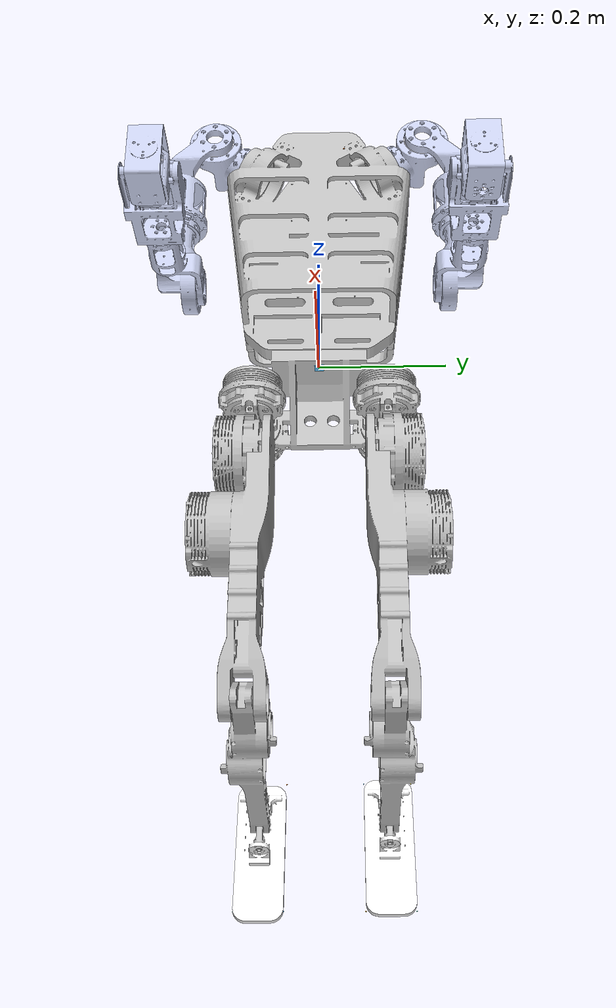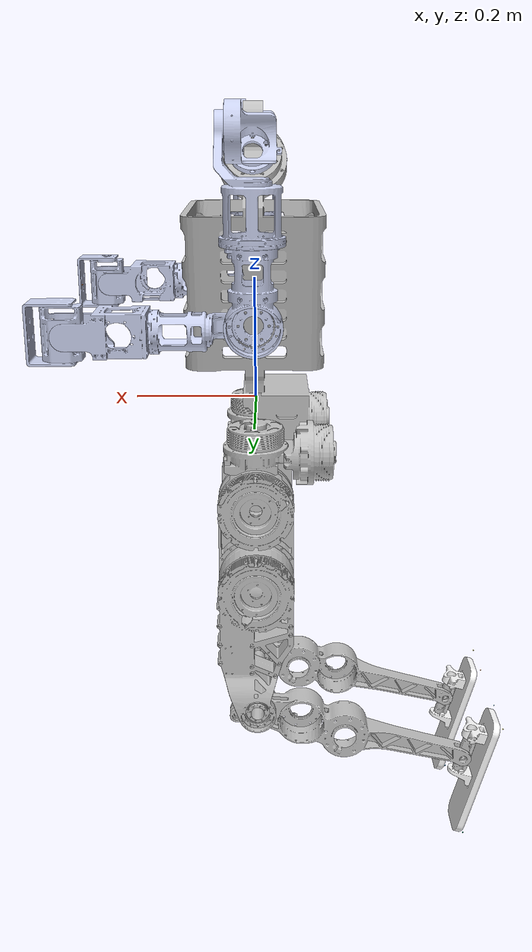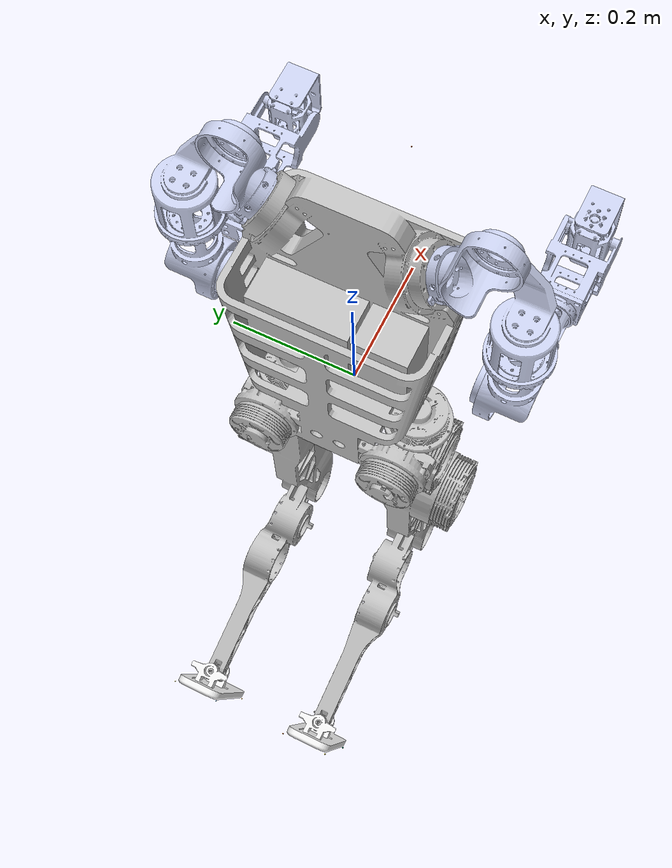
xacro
<?xml version="1.0" encoding="utf-8"?>
<robot xmlns:xacro="http://www.ros.org/wiki/xacro" name="hunter">

  <gazebo>
    <plugin name="gazebo_ros_control" filename="libhunter_bipedal_hw_sim.so">
      <robotNamespace>/</robotNamespace>
      <robotParam>legged_robot_description</robotParam>
      <robotSimType>legged_gazebo/LeggedHWSim</robotSimType>
    </plugin>
  </gazebo>

  <gazebo>
    <plugin filename="libgazebo_ros_p3d.so" name="p3d_base_controller">
      <alwaysOn>true</alwaysOn>
      <updateRate>500.0</updateRate>
      <bodyName>base_link</bodyName>
      <topicName>ground_truth/state</topicName>
      <gaussianNoise>0</gaussianNoise>
      <frameName>world</frameName>
      <xyzOffsets>0 0 0</xyzOffsets>
      <rpyOffsets>0 0 0</rpyOffsets>
    </plugin>
  </gazebo>

  <link name="base_link">
    <inertial>
      <origin
              xyz="-0.02983954 0.00086547 0.14856051"
              rpy="0 0 0" />
      <mass
              value="18.945426" />
      <inertia
              ixx="0.49280384"
              ixy="-0.00038292"
              ixz="-0.04951313"
              iyy="0.42814074"
              iyz="-0.00020145"
              izz="0.15555181" />
    </inertial>
    <visual>
      <origin xyz="0 0 0" rpy="0 0 0" />
      <geometry>
        <mesh
                filename="package://legged_hunter_description/meshes/base_link.STL" />
      </geometry>
      <material name="">
        <color rgba="0.75294 0.75294 0.75294 1" />
      </material>
    </visual>
    <collision>
      <origin xyz="-0.01 0 0.206" rpy="0 0 0" />
      <geometry>
        <box size="0.184 0.15 0.2" />
      </geometry>
    </collision>
  </link>

  <!-- Imu is fixed to the base link -->
  <joint name="imu_joint" type="fixed">
    <origin rpy="0. 0. 0." xyz="0. 0. 0"/>
    <parent link="base_link"/>
    <child link="imu_link"/>
  </joint>
  <!-- Imu link -->
  <link name="imu_link">
    <inertial>
      <mass value="0.01"/>
      <origin rpy="0 0 0" xyz="0 0 0"/>
      <inertia ixx="0.000001" ixy="0" ixz="0" iyy="0.000001" iyz="0" izz="0.000001"/>
    </inertial>
    <visual>
      <origin rpy="0 0 0" xyz="0 0 0"/>
      <geometry>
        <box size="0.015 0.015 0.004"/>
      </geometry>
    </visual>
    <material name="orange">
      <color rgba="255 108 10 255"/>
    </material>
  </link>
  <gazebo reference="imu_joint">
    <disableFixedJointLumping>true</disableFixedJointLumping>
  </gazebo>

  <!-- ************************ Left Leg ************************** -->

  <!-- ************* part 1 *************** -->
  <joint name="leg_l1_joint" type="revolute">
    <origin xyz="-0.08 0.105 -0.0675" rpy="0 0 0" />
    <parent link="base_link" />
    <child link="leg_l1_link" />
    <axis xyz="1 0 0" />
    <dynamics damping="0.00" friction="0.2"/>
    <limit lower="-0.5" upper="0.5" effort="300" velocity="18" />
  </joint>
  <link name="leg_l1_link">
    <inertial>
      <origin
              xyz="0.10000784 -0.00009881 0.01657766"
              rpy="0 0 0" />
      <mass
              value="1.54" />
      <inertia
              ixx="0.00139323"
              ixy="-0.00000019"
              ixz="-0.00000048"
              iyy="0.00140374"
              iyz="0.00000650"
              izz="0.00173658" />
    </inertial>
    <visual>
      <origin xyz="0 0 0" rpy="0 0 0" />
      <geometry>
        <mesh filename="package://legged_hunter_description/meshes/leg_l1_link.STL" />
      </geometry>
      <material name="">
        <color rgba="0.75294 0.75294 0.75294 1" />
      </material>
    </visual>
    <collision>
      <origin xyz="-0.019 -0.001 0" rpy="1.57 0 1.57" />
      <geometry>
        <box size="0.006 0.007 0.0155" />
      </geometry>
    </collision>
  </link>

  <!-- ************* part 2 *************** -->
  <joint name="leg_l2_joint" type="revolute">
    <origin xyz="0.080001 0 0" rpy="0 0 0" />
    <parent link="leg_l1_link" />
    <child link="leg_l2_link" />
    <axis xyz="0 0 1" />
    <dynamics damping="0.00" friction="0.2"/>
    <limit lower="-0.6" upper="0.6" effort="300" velocity="18" />
  </joint>
  <link name="leg_l2_link">
    <inertial>
      <origin
              xyz="0.00007811 0.00423442 -0.08994449"
              rpy="0 0 0" />
      <mass
              value="2.7" />
      <inertia
              ixx="0.00335768"
              ixy="-0.00001160"
              ixz="0.00000108"
              iyy="0.00323199"
              iyz="-0.00000465"
              izz="0.00335678" />
    </inertial>
    <visual>
      <origin xyz="0 0 0" rpy="0 0 0" />
      <geometry>
        <mesh filename="package://legged_hunter_description/meshes/leg_l2_link.STL" />
      </geometry>
      <material name="">
        <color rgba="0.75294 0.75294 0.75294 1" />
      </material>
    </visual>
    <collision>
      <origin xyz="0 0.0046 -0.057" rpy="1.57 0 0" />
      <geometry>
        <cylinder length="0.00146" radius="0.0025"/>
      </geometry>
    </collision>
  </link>

  <!-- ************* part 3 *************** -->
  <joint name="leg_l3_joint" type="revolute">
    <origin xyz="0 0 -0.090001" rpy="0 0 0" />
    <parent link="leg_l2_link" />
    <child link="leg_l3_link" />
    <axis xyz="0 1 0" />
    <dynamics damping="0.00" friction="0.2"/>
    <limit lower="-1.5" upper="0.5" effort="300" velocity="17" />
  </joint>
  <link name="leg_l3_link">
    <inertial>
      <origin
              xyz="0.00039619 0.04119274 -0.15289538"
              rpy="0 0 0" />
      <mass
              value="4.8" />
      <inertia
              ixx="0.04694541"
              ixy="0.00009678"
              ixz="0.00068599"
              iyy="0.04241315"
              iyz="-0.00410792"
              izz="0.01237341" />
    </inertial>
    <visual>
      <origin xyz="0 0 0" rpy="0 0 0" />
      <geometry>
        <mesh filename="package://legged_hunter_description/meshes/leg_l3_link.STL" />
      </geometry>
      <material name="">
        <color rgba="0.75294 0.75294 0.75294 1" />
      </material>
    </visual>
    <collision>
      <origin xyz="0.015 0.02 -0.1" rpy="1.57 0 0" />
      <geometry>
        <box size="0.006 0.025 0.005" />
      </geometry>
    </collision>
  </link>

  <!-- ************* part 4 *************** -->
  <joint name="leg_l4_joint" type="revolute">
    <origin xyz="0 0 -0.38" rpy="0 0 0" />
    <parent link="leg_l3_link" />
    <child link="leg_l4_link" />
    <axis xyz="0 1 0" />
    <dynamics damping="0.00" friction="0.2"/>
    <limit lower="0.1" upper="2.5" effort="300" velocity="17" />
  </joint>
  <link name="leg_l4_link">
    <inertial>
      <origin
              xyz="0.00066117 0.00034461 -0.14038088"
              rpy="0 0 0" />
      <mass
              value="2.9" />
      <inertia
              ixx="0.04319157"
              ixy="0.00000750"
              ixz="-0.00073877"
              iyy="0.04385624"
              iyz="0.00049349"
              izz="0.00190256" />
    </inertial>
    <visual>
      <origin xyz="0 0 0" rpy="0 0 0" />
      <geometry>
        <mesh filename="package://legged_hunter_description/meshes/leg_l4_link.STL" />
      </geometry>
      <material name="">
        <color rgba="0.75294 0.75294 0.75294 1" />
      </material>
    </visual>
    <collision>
      <origin xyz="0 0 -0.18" rpy="1.57 0 0" />
      <geometry>
        <box size="0.0041 0.025 0.003" />
      </geometry>
    </collision>
    <collision>
      <origin xyz="-0.011 0.012 -0.079" rpy="1.57 0 0" />
      <geometry>
        <cylinder length="0.007" radius="0.0034"/>
      </geometry>
    </collision>
  </link>

  <!-- ************* part 5 *************** -->
  <joint name="leg_l5_joint" type="revolute">
    <origin xyz="0 0 -0.38" rpy="0 0 0" />
    <parent link="leg_l4_link" />
    <child link="leg_l5_link" />
    <axis xyz="0 1 0" />
    <dynamics damping="0.02" friction="0.02"/>
    <limit lower="-1.5" upper="1.5" effort="300" velocity="15.49" />
  </joint>
  <link name="leg_l5_link">
    <inertial>
      <origin xyz="-0.00518023 0.00000000 -0.00246757" rpy="0 0 0" />
      <mass value="0.125" />
      <inertia ixx="0.00000749" ixy="0.00000000" ixz="-0.00000017" iyy="0.00006652" iyz="0.00000000" izz="0.00006206" />
    </inertial>
    <visual>
      <origin xyz="0 0 0" rpy="0 0 0" />
      <geometry>
        <mesh filename="package://legged_hunter_description/meshes/leg_l5_link.STL" />
      </geometry>
      <material name="">
        <color rgba="0.75294 0.75294 0.75294 1" />
      </material>
    </visual>
  </link>
  <!-- ************* part 6 *************** -->
  <joint name="leg_l6_joint" type="revolute">
    <origin xyz="0 0 0" rpy="0 0 0" />
    <parent link="leg_l5_link" />
    <child link="leg_l6_link" />
    <axis xyz="1 0 0" />
    <dynamics damping="0.02" friction="0.02"/>
    <limit lower="-1.5" upper="1.5" effort="300" velocity="15.49" />
  </joint>
  <link name="leg_l6_link">
    <inertial>
      <origin xyz="0.01218965 0.00000000 -0.01997971" rpy="0 0 0" />
      <mass value="0.56" />
      <inertia ixx="0.00030271" ixy="0.00000000" ixz="0.00012599" iyy="0.00193585" iyz="0.00000000" izz="0.00200345" />
    </inertial>
    <visual>
      <origin xyz="0 0 0" rpy="0 0 0" />
      <geometry>
        <mesh filename="package://legged_hunter_description/meshes/leg_l6_link.STL" />
      </geometry>
      <material name="">
        <color rgba="1 1 1 1" />
      </material>
    </visual>
    <collision>
      <origin xyz="0.03 0 -0.033" rpy="0 0 0" />
      <geometry>
        <box size="0.230 0.08 0.015" />
      </geometry>
    </collision>
  </link>
  <!-- ************* fixed joint & link *************** -->
  <joint name="leg_l6_fixed_1" type="fixed">
    <origin xyz="0.13 -0.04 -0.038" rpy="0 0 0" />
    <parent link="leg_l6_link" />
    <child link="leg_l_f1_link" />
  </joint>
  <link name="leg_l_f1_link">
    <inertial>
      <mass value="0.01" />
      <inertia ixx="0.000001" ixy="0" ixz="0" iyy="0.000001" iyz="0" izz="0.000001" />
    </inertial>
    <visual>
      <origin rpy="0 0 0" xyz="0 0 0"/>
      <geometry>
        <sphere radius="0.001"/>
      </geometry>
    </visual>
    <collision>
      <origin rpy="0 0 0" xyz="0 0 0"/>
      <geometry>
        <sphere radius="0.001"/>
      </geometry>
    </collision>
  </link>

  <joint name="leg_l6_fixed_2" type="fixed">
    <origin xyz="-0.09 -0.04 -0.038" rpy="0 0 0" />
    <parent link="leg_l6_link" />
    <child link="leg_l_f2_link" />
  </joint>
  <link name="leg_l_f2_link">
    <inertial>
      <mass value="0.01" />
      <inertia ixx="0.000001" ixy="0" ixz="0" iyy="0.000001" iyz="0" izz="0.000001" />
    </inertial>
    <visual>
      <origin rpy="0 0 0" xyz="0 0 0"/>
      <geometry>
        <sphere radius="0.001"/>
      </geometry>
    </visual>
    <collision>
      <origin rpy="0 0 0" xyz="-0 0 0"/>
      <geometry>
        <sphere radius="0.001"/>
      </geometry>
    </collision>
  </link>

  <joint name="leg_l6_fixed_3" type="fixed">
    <origin xyz="0.13 0.04 -0.038" rpy="0 0 0" />
    <parent link="leg_l6_link" />
    <child link="leg_l_f3_link" />
  </joint>
  <link name="leg_l_f3_link">
    <inertial>
      <mass value="0.01" />
      <inertia ixx="0.000001" ixy="0" ixz="0" iyy="0.000001" iyz="0" izz="0.000001" />
    </inertial>
    <visual>
      <origin rpy="0 0 0" xyz="0 0 0"/>
      <geometry>
        <sphere radius="0.001"/>
      </geometry>
    </visual>
    <collision>
      <origin rpy="0 0 0" xyz="0 0 0"/>
      <geometry>
        <sphere radius="0.001"/>
      </geometry>
    </collision>
  </link>

  <joint name="leg_l6_fixed_4" type="fixed">
    <origin xyz="-0.09 0.04 -0.038" rpy="0 0 0" />
    <parent link="leg_l6_link" />
    <child link="leg_l_f4_link" />
  </joint>
  <link name="leg_l_f4_link">
    <inertial>
      <mass value="0.01" />
      <inertia ixx="0.000001" ixy="0" ixz="0" iyy="0.000001" iyz="0" izz="0.000001" />
    </inertial>
    <visual>
      <origin rpy="0 0 0" xyz="0 0 0"/>
      <geometry>
        <sphere radius="0.001"/>
      </geometry>
    </visual>
    <collision>
      <origin rpy="0 0 0" xyz="-0 0 0"/>
      <geometry>
        <sphere radius="0.001"/>
      </geometry>
    </collision>
  </link>

  <!-- ************* gazebo reference *************** -->
  <gazebo reference="leg_l1_link">
    <mu1>0.6</mu1>
    <mu2>0.6</mu2>
    <self_collide>1</self_collide>
  </gazebo>
  <gazebo reference="leg_l2_link">
    <mu1>0.6</mu1>
    <mu2>0.6</mu2>
    <self_collide>1</self_collide>
  </gazebo>
  <gazebo reference="leg_l3_link">
    <mu1>0.6</mu1>
    <mu2>0.6</mu2>
    <self_collide>1</self_collide>
  </gazebo>
  <gazebo reference="leg_l4_link">
    <mu1>0.6</mu1>
    <mu2>0.6</mu2>
    <self_collide>1</self_collide>
  </gazebo>
  <gazebo reference="leg_l5_link">
    <mu1>0.6</mu1>
    <mu2>0.6</mu2>
  </gazebo>
  <gazebo reference="leg_l6_link">
    <mu1>1.5</mu1>
    <mu2>1.5</mu2>
    <self_collide>1</self_collide>
    <kp value="1000000.0"/>
    <kd value="100.0"/>
    <maxVel>1.0</maxVel>
    <minDepth>0.00</minDepth>
  </gazebo>
  <gazebo reference="leg_l_f1_link">
    <mu1>1.5</mu1>
    <mu2>1.5</mu2>
    <self_collide>1</self_collide>
    <kp value="1000000.0"/>
    <kd value="100.0"/>
    <maxVel>1.0</maxVel>
    <minDepth>0.00</minDepth>
  </gazebo>
  <gazebo reference="leg_l_f2_link">
    <mu1>1.5</mu1>
    <mu2>1.5</mu2>
    <self_collide>1</self_collide>
    <kp value="1000000.0"/>
    <kd value="100.0"/>
    <maxVel>1.0</maxVel>
    <minDepth>0.00</minDepth>
  </gazebo>
  <gazebo reference="leg_l_f3_link">
    <mu1>1.5</mu1>
    <mu2>1.5</mu2>
    <self_collide>1</self_collide>
    <kp value="1000000.0"/>
    <kd value="100.0"/>
    <maxVel>1.0</maxVel>
    <minDepth>0.00</minDepth>
  </gazebo>
  <gazebo reference="leg_l_f4_link">
    <mu1>1.5</mu1>
    <mu2>1.5</mu2>
    <self_collide>1</self_collide>
    <kp value="1000000.0"/>
    <kd value="100.0"/>
    <maxVel>1.0</maxVel>
    <minDepth>0.00</minDepth>
  </gazebo>

  <!-- ************* transmission *************** -->
  <transmission name="leg_l1_tran">
    <type>transmission_interface/SimpleTransmission</type>
    <joint name="leg_l1_joint">
      <hardwareInterface>hardware_interface/EffortJointInterface</hardwareInterface>
    </joint>
    <actuator name="leg_l1_motor">
      <hardwareInterface>hardware_interface/EffortJointInterface</hardwareInterface>
      <mechanicalReduction>1</mechanicalReduction>
      <maxVelocity>2.87</maxVelocity><!-- 85rpm -->
      <maxEffort>182</maxEffort><!-- 36Nm -->
    </actuator>
  </transmission>

  <transmission name="leg_l2_tran">
    <type>transmission_interface/SimpleTransmission</type>
    <joint name="leg_l2_joint">
      <hardwareInterface>hardware_interface/EffortJointInterface</hardwareInterface>
    </joint>
    <actuator name="leg_l2_motor">
      <hardwareInterface>hardware_interface/EffortJointInterface</hardwareInterface>
      <mechanicalReduction>1</mechanicalReduction>
      <maxVelocity>2.87</maxVelocity><!-- 160rpm -->
      <maxEffort>182</maxEffort><!-- 94Nm -->
    </actuator>
  </transmission>

  <transmission name="leg_l3_tran">
    <type>transmission_interface/SimpleTransmission</type>
    <joint name="leg_l3_joint">
      <hardwareInterface>hardware_interface/EffortJointInterface</hardwareInterface>
    </joint>
    <actuator name="leg_l3_motor">
      <hardwareInterface>hardware_interface/EffortJointInterface</hardwareInterface>
      <mechanicalReduction>1</mechanicalReduction>
      <maxVelocity>2.6545</maxVelocity><!-- 160rpm -->
      <maxEffort>278</maxEffort><!-- 94Nm -->
    </actuator>
  </transmission>

  <transmission name="leg_l4_tran">
    <type>transmission_interface/SimpleTransmission</type>
    <joint name="leg_l4_joint">
      <hardwareInterface>hardware_interface/EffortJointInterface</hardwareInterface>
    </joint>
    <actuator name="leg_l4_motor">
      <hardwareInterface>hardware_interface/EffortJointInterface</hardwareInterface>
      <mechanicalReduction>1</mechanicalReduction>
      <maxVelocity>2.6545</maxVelocity><!-- 85rpm -->
      <maxEffort>278</maxEffort><!-- 36Nm -->
    </actuator>
  </transmission>

  <transmission name="leg_l5_tran">
    <type>transmission_interface/SimpleTransmission</type>
    <joint name="leg_l5_joint">
      <hardwareInterface>hardware_interface/EffortJointInterface</hardwareInterface>
    </joint>
    <actuator name="leg_l5_motor">
      <hardwareInterface>hardware_interface/EffortJointInterface</hardwareInterface>
      <mechanicalReduction>1</mechanicalReduction>
    </actuator>
  </transmission>

  <transmission name="leg_l6_tran">
    <type>transmission_interface/SimpleTransmission</type>
    <joint name="leg_l6_joint">
      <hardwareInterface>hardware_interface/EffortJointInterface</hardwareInterface>
    </joint>
    <actuator name="leg_l6_motor">
      <hardwareInterface>hardware_interface/EffortJointInterface</hardwareInterface>
      <mechanicalReduction>1</mechanicalReduction>
    </actuator>
  </transmission>
  <!-- ************************ Right Leg ************************** -->

  <!-- ************* part 1 *************** -->
  <joint name="leg_r1_joint" type="revolute">
    <origin xyz="-0.08 -0.105 -0.0675" rpy="0 0 0" />
    <parent link="base_link" />
    <child link="leg_r1_link" />
    <axis xyz="1 0 0" />
    <dynamics damping="0.00" friction="0.2"/>
    <limit lower="-0.5" upper="0.5" effort="300" velocity="18" />
  </joint>
  <link name="leg_r1_link">
    <inertial>
      <origin
              xyz="0.07867925 -0.00007201 0.00877160"
              rpy="0 0 0" />
      <mass
              value="1.54" />
      <inertia
              ixx="0.00139323"
              ixy="-0.00000019"
              ixz="0.00000048"
              iyy="0.00140374"
              iyz="-0.00000650"
              izz="0.00173658" />
    </inertial>
    <visual>
      <origin xyz="0 0 0" rpy="0 0 0" />
      <geometry>
        <mesh filename="package://legged_hunter_description/meshes/leg_r1_link.STL" />
      </geometry>
      <material name="">
        <color rgba="0.75294 0.75294 0.75294 1" />
      </material>
    </visual>
    <collision>
      <origin xyz="-0.019 -0.001 0" rpy="1.57 0 1.57" />
      <geometry>
        <box size="0.006 0.007 0.0155" />
      </geometry>
    </collision>
  </link>

  <!-- ************* part 2 *************** -->
  <joint name="leg_r2_joint" type="revolute">
    <origin xyz="0.080001 0 0" rpy="0 0 0" />
    <parent link="leg_r1_link" />
    <child link="leg_r2_link" />
    <axis xyz="0 0 1" />
    <dynamics damping="0.00" friction="0.2"/>
    <limit lower="-0.6" upper="0.6" effort="300" velocity="18" />
  </joint>
  <link name="leg_r2_link">
    <inertial>
      <origin
              xyz="-0.00007811 -0.00423442 -0.15499595"
              rpy="0 0 0" />
      <mass
              value="2.7" />
      <inertia
              ixx="0.00335768"
              ixy="-0.00001160"
              ixz="-0.00000108"
              iyy="0.00323199"
              iyz="0.00000465"
              izz="0.00335678" />
    </inertial>
    <visual>
      <origin xyz="0 0 0" rpy="0 0 0" />
      <geometry>
        <mesh filename="package://legged_hunter_description/meshes/leg_r2_link.STL" />
      </geometry>
      <material name="">
        <color rgba="0.75294 0.75294 0.75294 1" />
      </material>
    </visual>
    <collision>
      <origin xyz="0 -0.0033 -0.057" rpy="1.57 0 0" />
      <geometry>
        <cylinder length="0.00146" radius="0.0015"/>
      </geometry>
    </collision>
  </link>

  <!-- ************* part 3 *************** -->
  <joint name="leg_r3_joint" type="revolute">
    <origin xyz="0 0 -0.090001" rpy="0 0 0" />
    <parent link="leg_r2_link" />
    <child link="leg_r3_link" />
    <axis xyz="0 1 0" />
    <dynamics damping="0.00" friction="0.2"/>
    <limit lower="-1.5" upper="0.5" effort="300" velocity="17" />
  </joint>
  <link name="leg_r3_link">
    <inertial>
      <origin
              xyz="0.00044061 -0.04113251 -0.15499595"
              rpy="0 0 0" />
      <mass
              value="4.8" />
      <inertia
              ixx="0.04859117"
              ixy="-0.00008785"
              ixz="0.00069103"
              iyy="0.04399962"
              iyz="0.00445708"
              izz="0.01238287" />
    </inertial>
    <visual>
      <origin xyz="0 0 0" rpy="0 0 0" />
      <geometry>
        <mesh filename="package://legged_hunter_description/meshes/leg_r3_link.STL" />
      </geometry>
      <material name="">
        <color rgba="0.75294 0.75294 0.75294 1" />
      </material>
    </visual>
    <collision>
      <origin xyz="0.015 -0.02 -0.1" rpy="1.57 0 0" />
      <geometry>
        <box size="0.006 0.025 0.005" />
      </geometry>
    </collision>
  </link>

  <!-- ************* part 4 *************** -->
  <joint name="leg_r4_joint" type="revolute">
    <origin xyz="0 0 -0.38" rpy="0 0 0" />
    <parent link="leg_r3_link" />
    <child link="leg_r4_link" />
    <axis xyz="0 1 0" />
    <dynamics damping="0.00" friction="0.2"/>
    <limit lower="0.1" upper="2.5" effort="300" velocity="17" />
  </joint>
  <link name="leg_r4_link">
    <inertial>
      <origin
              xyz="0.00066117 -0.00034461 -0.14038088"
              rpy="0 0 0" />
      <mass
              value="2.9" />
      <inertia
              ixx="0.04319157"
              ixy="-0.00000750"
              ixz="-0.00073877"
              iyy="0.04385624"
              iyz="-0.00049349"
              izz="0.00190256" />
    </inertial>
    <visual>
      <origin xyz="0 0 0" rpy="0 0 0" />
      <geometry>
        <mesh filename="package://legged_hunter_description/meshes/leg_r4_link.STL" />
      </geometry>
      <material name="">
        <color rgba="0.75294 0.75294 0.75294 1" />
      </material>
    </visual>
    <collision>
      <origin xyz="0 0 -0.18" rpy="1.57 0 0" />
      <geometry>
        <box size="0.0041 0.025 0.003" />
      </geometry>
    </collision>
    <collision>
      <origin xyz="-0.011 -0.012 -0.079" rpy="1.57 0 0" />
      <geometry>
        <cylinder length="0.07" radius="0.034"/>
      </geometry>
    </collision>
  </link>

  <!-- ************* part 5 *************** -->
  <joint name="leg_r5_joint" type="revolute">
    <origin xyz="0 0 -0.38" rpy="0 0 0" />
    <parent link="leg_r4_link" />
    <child link="leg_r5_link" />
    <axis xyz="0 1 0" />
    <dynamics damping="0.02" friction="0.02"/>
    <limit lower="-1.5" upper="1.5" effort="300" velocity="15.49" />
  </joint>
  <link name="leg_r5_link">
    <inertial>
      <origin xyz="-0.00518023 0.000000 -0.00246757" rpy="0 0 0" />
      <mass value="0.125" />
      <inertia ixx="0.00000749" ixy="0.00000000" ixz="-0.00000017" iyy="0.00006652" iyz="0.00000000" izz="0.00006206" />
    </inertial>
    <visual>
      <origin xyz="0 0 0" rpy="0 0 0" />
      <geometry>
        <mesh filename="package://legged_hunter_description/meshes/leg_r5_link.STL" />
      </geometry>
      <material name="">
        <color rgba="0.75294 0.75294 0.75294 1" />
      </material>
    </visual>
  </link>

  <!-- ************* part 6 *************** -->

  <joint name="leg_r6_joint" type="revolute">
    <origin xyz="0 0 0" rpy="0 0 0" />
    <parent link="leg_r5_link" />
    <child link="leg_r6_link" />
    <axis xyz="1 0 0" />
    <dynamics damping="0.02" friction="0.02"/>
    <limit lower="-1.5" upper="1.5" effort="300" velocity="15.49" />
  </joint>
  <link name="leg_r6_link">
    <inertial>
      <origin xyz="0.01218965 0.00000000 -0.01997971" rpy="0 0 0" />
      <mass value="0.56" />
      <inertia ixx="0.00030271" ixy="0.00000000" ixz="0.00012599" iyy="0.00193585" iyz="0.00000000" izz="0.00200345" />
    </inertial>
    <visual>
      <origin xyz="0 0 0" rpy="0 0 0" />
      <geometry>
        <mesh filename="package://legged_hunter_description/meshes/leg_r6_link.STL" />
      </geometry>
      <material name="">
        <color rgba="1 1 1 1" />
      </material>
    </visual>
    <collision>
      <origin xyz="0.03 0 -0.033" rpy="0 0 0" />
      <geometry>
        <box size="0.230 0.08 0.015" />
      </geometry>
    </collision>
  </link>

  <!-- ************* fixed joint *************** -->
  <joint name="leg_r6_fixed_1" type="fixed">
    <origin xyz="0.13 -0.04 -0.038" rpy="0 0 0" />
    <parent link="leg_r6_link" />
    <child link="leg_r_f1_link" />
  </joint>
  <link name="leg_r_f1_link">
    <inertial>
      <mass value="0.01" />
      <inertia ixx="0.000001" ixy="0" ixz="0" iyy="0.000001" iyz="0" izz="0.000001" />
    </inertial>
    <visual>
      <origin rpy="0 0 0" xyz="0 0 0"/>
      <geometry>
        <sphere radius="0.001"/>
      </geometry>
    </visual>
    <collision>
      <origin rpy="0 0 0" xyz="0 0 0"/>
      <geometry>
        <sphere radius="0.001"/>
      </geometry>
    </collision>
  </link>

  <joint name="leg_r6_fixed_2" type="fixed">
    <origin xyz="-0.090 -0.04 -0.038" rpy="0 0 0" />
    <parent link="leg_r6_link" />
    <child link="leg_r_f2_link" />
  </joint>
  <link name="leg_r_f2_link">
    <inertial>
      <mass value="0.01" />
      <inertia ixx="0.000001" ixy="0" ixz="0" iyy="0.000001" iyz="0" izz="0.000001" />
    </inertial>
    <visual>
      <origin rpy="0 0 0" xyz="0 0 0"/>
      <geometry>
        <sphere radius="0.001"/>
      </geometry>
    </visual>
    <collision>
      <origin rpy="0 0 0" xyz="0 0 0"/>
      <geometry>
        <sphere radius="0.001"/>
      </geometry>
    </collision>
  </link>

  <joint name="leg_r6_fixed_3" type="fixed">
    <origin xyz="0.13 0.04 -0.038" rpy="0 0 0" />
    <parent link="leg_r6_link" />
    <child link="leg_r_f3_link" />
  </joint>
  <link name="leg_r_f3_link">
    <inertial>
      <mass value="0.01" />
      <inertia ixx="0.000001" ixy="0" ixz="0" iyy="0.000001" iyz="0" izz="0.000001" />
    </inertial>
    <visual>
      <origin rpy="0 0 0" xyz="0 0 0"/>
      <geometry>
        <sphere radius="0.001"/>
      </geometry>
    </visual>
    <collision>
      <origin rpy="0 0 0" xyz="0 0 0"/>
      <geometry>
        <sphere radius="0.001"/>
      </geometry>
    </collision>
  </link>

  <joint name="leg_r6_fixed_4" type="fixed">
    <origin xyz="-0.090 0.04 -0.038" rpy="0 0 0" />
    <parent link="leg_r6_link" />
    <child link="leg_r_f4_link" />
  </joint>
  <link name="leg_r_f4_link">
    <inertial>
      <mass value="0.01" />
      <inertia ixx="0.000001" ixy="0" ixz="0" iyy="0.000001" iyz="0" izz="0.000001" />
    </inertial>
    <visual>
      <origin rpy="0 0 0" xyz="0 0 0"/>
      <geometry>
        <sphere radius="0.001"/>
      </geometry>
    </visual>
    <collision>
      <origin rpy="0 0 0" xyz="0 0 0"/>
      <geometry>
        <sphere radius="0.001"/>
      </geometry>
    </collision>
  </link>

  <!-- ************* gazebo reference *************** -->
  <gazebo reference="leg_r1_link">
    <mu1>0.6</mu1>
    <mu2>0.6</mu2>
    <self_collide>1</self_collide>
  </gazebo>
  <gazebo reference="leg_r2_link">
    <mu1>0.6</mu1>
    <mu2>0.6</mu2>
    <self_collide>1</self_collide>
  </gazebo>
  <gazebo reference="leg_r3_link">
    <mu1>0.6</mu1>
    <mu2>0.6</mu2>
    <self_collide>1</self_collide>
  </gazebo>
  <gazebo reference="leg_r4_link">
    <mu1>0.6</mu1>
    <mu2>0.6</mu2>
    <self_collide>1</self_collide>
  </gazebo>
  <gazebo reference="leg_r5_link">
    <mu1>0.6</mu1>
    <mu2>0.6</mu2>
  </gazebo>
  <gazebo reference="leg_r6_link">
    <mu1>1.5</mu1>
    <mu2>1.5</mu2>
    <self_collide>1</self_collide>
    <kp value="1000000.0"/>
    <kd value="100.0"/>
    <maxVel>1.0</maxVel>
    <minDepth>0.00</minDepth>
  </gazebo>

  <gazebo reference="leg_r_f1_link">
    <mu1>1.5</mu1>
    <mu2>1.5</mu2>
    <self_collide>1</self_collide>
    <kp value="1000000.0"/>
    <kd value="100.0"/>
    <maxVel>1.0</maxVel>
    <minDepth>0.00</minDepth>
  </gazebo>
  <gazebo reference="leg_r_f2_link">
    <mu1>1.5</mu1>
    <mu2>1.5</mu2>
    <self_collide>1</self_collide>
    <kp value="1000000.0"/>
    <kd value="100.0"/>
    <maxVel>1.0</maxVel>
    <minDepth>0.00</minDepth>
  </gazebo>
  <gazebo reference="leg_r_f3_link">
    <mu1>1.5</mu1>
    <mu2>1.5</mu2>
    <self_collide>1</self_collide>
    <kp value="1000000.0"/>
    <kd value="100.0"/>
    <maxVel>1.0</maxVel>
    <minDepth>0.00</minDepth>
  </gazebo>
  <gazebo reference="leg_r_f4_link">
    <mu1>1.5</mu1>
    <mu2>1.5</mu2>
    <self_collide>1</self_collide>
    <kp value="1000000.0"/>
    <kd value="100.0"/>
    <maxVel>1.0</maxVel>
    <minDepth>0.00</minDepth>
  </gazebo>

  <!-- ************* gazebo transmission *************** -->
  <transmission name="leg_r1_tran">
    <type>transmission_interface/SimpleTransmission</type>
    <joint name="leg_r1_joint">
      <hardwareInterface>hardware_interface/EffortJointInterface</hardwareInterface>
    </joint>
    <actuator name="leg_r1_motor">
      <hardwareInterface>hardware_interface/EffortJointInterface</hardwareInterface>
      <mechanicalReduction>1</mechanicalReduction>
      <maxVelocity>2.87</maxVelocity><!-- 85rpm -->
      <maxEffort>182</maxEffort><!-- 36Nm -->
    </actuator>
  </transmission>

  <transmission name="leg_r2_tran">
    <type>transmission_interface/SimpleTransmission</type>
    <joint name="leg_r2_joint">
      <hardwareInterface>hardware_interface/EffortJointInterface</hardwareInterface>
    </joint>
    <actuator name="leg_r2_motor">
      <hardwareInterface>hardware_interface/EffortJointInterface</hardwareInterface>
      <mechanicalReduction>1</mechanicalReduction>
      <maxVelocity>2.87</maxVelocity><!-- 160rpm -->
      <maxEffort>182</maxEffort><!-- 94Nm -->
    </actuator>
  </transmission>

  <transmission name="leg_r3_tran">
    <type>transmission_interface/SimpleTransmission</type>
    <joint name="leg_r3_joint">
      <hardwareInterface>hardware_interface/EffortJointInterface</hardwareInterface>
    </joint>
    <actuator name="leg_r3_motor">
      <hardwareInterface>hardware_interface/EffortJointInterface</hardwareInterface>
      <mechanicalReduction>1</mechanicalReduction>
      <maxVelocity>2.6545</maxVelocity><!-- 160rpm -->
      <maxEffort>278</maxEffort><!-- 94Nm -->
    </actuator>
  </transmission>

  <transmission name="leg_r4_tran">
    <type>transmission_interface/SimpleTransmission</type>
    <joint name="leg_r4_joint">
      <hardwareInterface>hardware_interface/EffortJointInterface</hardwareInterface>
    </joint>
    <actuator name="leg_r4_motor">
      <hardwareInterface>hardware_interface/EffortJointInterface</hardwareInterface>
      <mechanicalReduction>1</mechanicalReduction>
      <maxVelocity>2.6545</maxVelocity><!-- 85rpm -->
      <maxEffort>278</maxEffort><!-- 36Nm -->
    </actuator>
  </transmission>

  <transmission name="leg_r5_tran">
    <type>transmission_interface/SimpleTransmission</type>
    <joint name="leg_r5_joint">
      <hardwareInterface>hardware_interface/EffortJointInterface</hardwareInterface>
    </joint>
    <actuator name="leg_r5_motor">
      <hardwareInterface>hardware_interface/EffortJointInterface</hardwareInterface>
      <mechanicalReduction>1</mechanicalReduction>
    </actuator>
  </transmission>

  <transmission name="leg_r6_tran">
    <type>transmission_interface/SimpleTransmission</type>
    <joint name="leg_r6_joint">
      <hardwareInterface>hardware_interface/EffortJointInterface</hardwareInterface>
    </joint>
    <actuator name="leg_r6_motor">
      <hardwareInterface>hardware_interface/EffortJointInterface</hardwareInterface>
      <mechanicalReduction>1</mechanicalReduction>
    </actuator>
  </transmission>

  <!-- ************************ Left zarm ************************** -->
  <link name="zarm_l1_Link">
    <inertial>
      <origin
              xyz="0.00035297 0.0054003 0.054195"
              rpy="0 0 0" />
      <mass value="0.9535" />
      <inertia
              ixx="0.0012763"
              ixy="5.61E-06"
              ixz="1.12E-06"
              iyy="0.0012519"
              iyz="3.58E-05"
              izz="0.0010663" />
    </inertial>
    <visual>
      <origin xyz="0 0 0"
              rpy="0 0 0" />
      <geometry>
        <mesh filename="package://legged_hunter_description/meshes/zarm_l1_Link.STL" />
      </geometry>
      <material name="">
        <color rgba="0.79216 0.81961 0.93333 1" />
      </material>
    </visual>
  </link>
  <joint name="zarm_l1_joint"
         type="revolute">
    <origin xyz="0 0.12279 0.40213"
            rpy="0 -1.0472 -1.5708" />
    <parent link="base_link" />
    <child link="zarm_l1_Link" />
    <axis xyz="0 0 1" />
    <limit lower="-3.14"
           upper="3.14"
           effort="90"
           velocity="3.14" />
  </joint>
  <link name="zarm_l2_Link">
    <inertial>
      <origin xyz="0.055439 -0.090985 -0.032863"
              rpy="0 0 0" />
      <mass value="1.2" />
      <inertia
              ixx="0.0025886"
              ixy="0.00049571"
              ixz="0.00023309"
              iyy="0.001704"
              iyz="-0.00049499"
              izz="0.002642" />
    </inertial>
    <visual>
      <origin xyz="0 0 0"
              rpy="0 0 0" />
      <geometry>
        <mesh filename="package://legged_hunter_description/meshes/zarm_l2_Link.STL" />
      </geometry>
      <material name="">
        <color rgba="0.79216 0.81961 0.93333 1" />
      </material>
    </visual>
  </link>
  <joint name="zarm_l2_joint"
         type="revolute">
    <origin xyz="0 0.039 0.063"
            rpy="1.5708 -1.0472 3.1416" />
    <parent link="zarm_l1_Link" />
    <child link="zarm_l2_Link" />
    <axis xyz="0 0 1" />
    <limit lower="0"
           upper="2.093"
           effort="90"
           velocity="3.14" />
  </joint>
  <link name="zarm_l3_Link">
    <inertial>
      <origin xyz="0.0048486 -0.00016012 0.11131"
              rpy="0 0 0" />
      <mass value="1.0637" />
      <inertia
              ixx="0.0025964"
              ixy="5.74E-06"
              ixz="-9.7E-05"
              iyy="0.002625"
              iyz="-8.2E-07"
              izz="0.0011718" />
    </inertial>
    <visual>
      <origin xyz="0 0 0"
              rpy="0 0 0" />
      <geometry>
        <mesh filename="package://legged_hunter_description/meshes/zarm_l3_Link.STL" />
      </geometry>
      <material name="">
        <color rgba="0.79216 0.81961 0.93333 1" />
      </material>
    </visual>
  </link>
  <joint name="zarm_l3_joint"
         type="revolute">
    <origin xyz="0.060456 -0.152 -0.039"
            rpy="1.5708 0 0" />
    <parent link="zarm_l2_Link" />
    <child link="zarm_l3_Link" />
    <axis xyz="0 0 1" />
    <limit lower="-3.14"
           upper="3.14"
           effort="90"
           velocity="3.14" />
  </joint>
  <link name="zarm_l4_Link">
    <inertial>
      <origin xyz="2.47E-05 -0.084392 -0.031049"
              rpy="0 0 0" />
      <mass value="0.5554" />
      <inertia
              ixx="0.0011728"
              ixy="-4.9E-07"
              ixz="3.1E-07"
              iyy="0.00038472"
              iyz="-0.0002729"
              izz="0.0010442" />
    </inertial>
    <visual>
      <origin xyz="0 0 0"
              rpy="0 0 0" />
      <geometry>
        <mesh filename="package://legged_hunter_description/meshes/zarm_l4_Link.STL" />
      </geometry>
      <material name="">
        <color rgba="0.79216 0.81961 0.93333 1" />
      </material>
    </visual>
  </link>
  <joint name="zarm_l4_joint"
         type="revolute">
    <origin xyz="-0.039 0 0.123"
            rpy="-1.5708 1.5708 1.5708" />
    <parent link="zarm_l3_Link" />
    <child link="zarm_l4_Link" />
    <axis xyz="0 0 1" />
    <limit lower="-2"
           upper="2"
           effort="90"
           velocity="3.14" />
  </joint>
  <link name="zarm_l5_Link">
    <inertial>
      <origin xyz="0.0077864 -0.00025521 0.047106"
              rpy="0 0 0" />
      <mass value="0.5729" />
      <inertia
              ixx="0.00065916"
              ixy="9.54E-06"
              ixz="-6E-05"
              iyy="0.00092404"
              iyz="1.58E-06"
              izz="0.00063648" />
    </inertial>
    <visual>
      <origin xyz="0 0 0"
              rpy="0 0 0" />
      <geometry>
        <mesh filename="package://legged_hunter_description/meshes/zarm_l5_Link.STL" />
      </geometry>
      <material name="">
        <color rgba="0.79216 0.81961 0.93333 1" />
      </material>
    </visual>
  </link>
  <joint name="zarm_l5_joint"
         type="revolute">
    <origin xyz="0 -0.1461 -0.039"
            rpy="1.5708 1.5708 0" />
    <parent link="zarm_l4_Link" />
    <child link="zarm_l5_Link" />
    <axis xyz="0 0 1" />
    <limit lower="-3.14"
           upper="3.14"
           effort="90"
           velocity="3.14" />
  </joint>
  <link name="zarm_l6_Link">
    <inertial>
      <origin xyz="0 0.0066539 0.031141"
              rpy="0 0 0" />
      <mass value="0.4316" />
      <inertia
              ixx="0.00039901"
              ixy="-4.2E-07"
              ixz="-2.4E-07"
              iyy="0.00022416"
              iyz="-1.03E-06"
              izz="0.00038958" />
    </inertial>
    <visual>
      <origin xyz="0 0 0"
              rpy="0 0 0" />
      <geometry>
        <mesh filename="package://legged_hunter_description/meshes/zarm_l6_Link.STL" />
      </geometry>
      <material name="">
        <color rgba="0.79216 0.81961 0.93333 1" />
      </material>
    </visual>
  </link>
  <joint name="zarm_l6_joint"
         type="revolute">
    <origin xyz="0.031 0 0.1289"
            rpy="0 -1.5708 0" />
    <parent link="zarm_l5_Link" />
    <child link="zarm_l6_Link" />
    <axis xyz="0 0 1" />
    <limit lower="-1.047"
           upper="1.047"
           effort="90"
           velocity="3.14" />
  </joint>
  <link name="zarm_l7_Link">
    <inertial>
      <origin xyz="0 0.028046 0.034646"
              rpy="0 0 0" />
      <mass value="0.23075" />
      <inertia
              ixx="0.00039565"
              ixy="0"
              ixz="0"
              iyy="0.0003459"
              iyz="1.9E-05"
              izz="0.000148" />
    </inertial>
    <visual>
      <origin xyz="0 0 0"
              rpy="0 0 0" />
      <geometry>
        <mesh filename="package://legged_hunter_description/meshes/zarm_l7_Link.STL" />
      </geometry>
      <material name="">
        <color rgba="0.79216 0.81961 0.93333 1" />
      </material>
    </visual>
  </link>
  <joint name="zarm_l7_joint"
         type="revolute">
    <origin xyz="0 -0.0374 0.031"
            rpy="1.5708 -1.5708 0" />
    <parent link="zarm_l6_Link" />
    <child link="zarm_l7_Link" />
    <axis xyz="0 0 1" />
    <limit lower="-1.57"
           upper="1.57"
           effort="90"
           velocity="3.14" />
  </joint>
  <joint name="zarm_l_fixed_1" type="fixed">
    <origin xyz="0.0 0.0 0.0" rpy="0 0 0" />
    <parent link="zarm_l7_Link" />
    <child link="zarm_l_f1_link" />
  </joint>
  <link name="zarm_l_f1_link">
    <inertial>
      <mass value="0.01" />
      <inertia ixx="0.000001" ixy="0" ixz="0" iyy="0.000001" iyz="0" izz="0.000001" />
    </inertial>
    <visual>
      <origin rpy="0 0 0" xyz="0 0 0"/>
      <geometry>
        <sphere radius="0.001"/>
      </geometry>
    </visual>
    <collision>
      <origin rpy="0 0 0" xyz="0 0 0"/>
      <geometry>
        <sphere radius="0.001"/>
      </geometry>
    </collision>
  </link>

  <gazebo reference="zarm_l1_Link">
    <mu1>0.6</mu1>
    <mu2>0.6</mu2>
    <self_collide>1</self_collide>
  </gazebo>
  <gazebo reference="zarm_l2_Link">
    <mu1>0.6</mu1>
    <mu2>0.6</mu2>
    <self_collide>1</self_collide>
  </gazebo>
  <gazebo reference="zarm_l3_Link">
    <mu1>0.6</mu1>
    <mu2>0.6</mu2>
    <self_collide>1</self_collide>
  </gazebo>
  <gazebo reference="zarm_l4_Link">
    <mu1>0.6</mu1>
    <mu2>0.6</mu2>
    <self_collide>1</self_collide>
  </gazebo>
  <gazebo reference="zarm_l5_Link">
    <mu1>0.6</mu1>
    <mu2>0.6</mu2>
    <self_collide>1</self_collide>
  </gazebo>
  <gazebo reference="zarm_l6_Link">
    <mu1>0.6</mu1>
    <mu2>0.6</mu2>
    <self_collide>1</self_collide>
  </gazebo>
  <gazebo reference="zarm_l7_Link">
    <mu1>0.6</mu1>
    <mu2>0.6</mu2>
    <self_collide>1</self_collide>
  </gazebo>
  <gazebo reference="zarm_l_f1_link">
    <mu1>1.5</mu1>
    <mu2>1.5</mu2>
    <self_collide>1</self_collide>
    <kp value="1000000.0"/>
    <kd value="100.0"/>
    <maxVel>1.0</maxVel>
    <minDepth>0.00</minDepth>
  </gazebo>

  <transmission name="zarm_l1_tran">
    <type>transmission_interface/SimpleTransmission</type>
    <joint name="zarm_l1_joint">
      <hardwareInterface>hardware_interface/EffortJointInterface</hardwareInterface>
    </joint>
    <actuator name="zarm_l1_motor">
      <hardwareInterface>hardware_interface/EffortJointInterface</hardwareInterface>
      <mechanicalReduction>1</mechanicalReduction>
      <maxVelocity>2.87</maxVelocity>
      <maxEffort>182</maxEffort>
    </actuator>
  </transmission>

  <transmission name="zarm_l2_tran">
    <type>transmission_interface/SimpleTransmission</type>
    <joint name="zarm_l2_joint">
      <hardwareInterface>hardware_interface/EffortJointInterface</hardwareInterface>
    </joint>
    <actuator name="zarm_l2_motor">
      <hardwareInterface>hardware_interface/EffortJointInterface</hardwareInterface>
      <mechanicalReduction>1</mechanicalReduction>
      <maxVelocity>2.87</maxVelocity>
      <maxEffort>182</maxEffort>
    </actuator>
  </transmission>

  <transmission name="zarm_l3_tran">
    <type>transmission_interface/SimpleTransmission</type>
    <joint name="zarm_l3_joint">
      <hardwareInterface>hardware_interface/EffortJointInterface</hardwareInterface>
    </joint>
    <actuator name="zarm_l3_motor">
      <hardwareInterface>hardware_interface/EffortJointInterface</hardwareInterface>
      <mechanicalReduction>1</mechanicalReduction>
      <maxVelocity>2.6545</maxVelocity>
      <maxEffort>278</maxEffort>
    </actuator>
  </transmission>

  <transmission name="zarm_l4_tran">
    <type>transmission_interface/SimpleTransmission</type>
    <joint name="zarm_l4_joint">
      <hardwareInterface>hardware_interface/EffortJointInterface</hardwareInterface>
    </joint>
    <actuator name="zarm_l4_motor">
      <hardwareInterface>hardware_interface/EffortJointInterface</hardwareInterface>
      <mechanicalReduction>1</mechanicalReduction>
      <maxVelocity>2.6545</maxVelocity>
      <maxEffort>278</maxEffort>
    </actuator>
  </transmission>

  <transmission name="zarm_l5_tran">
    <type>transmission_interface/SimpleTransmission</type>
    <joint name="zarm_l5_joint">
      <hardwareInterface>hardware_interface/EffortJointInterface</hardwareInterface>
    </joint>
    <actuator name="zarm_l5_motor">
      <hardwareInterface>hardware_interface/EffortJointInterface</hardwareInterface>
      <mechanicalReduction>1</mechanicalReduction>
      <maxVelocity>2.6545</maxVelocity>
      <maxEffort>278</maxEffort>
    </actuator>
  </transmission>

  <transmission name="zarm_l6_tran">
    <type>transmission_interface/SimpleTransmission</type>
    <joint name="zarm_l6_joint">
      <hardwareInterface>hardware_interface/EffortJointInterface</hardwareInterface>
    </joint>
    <actuator name="zarm_l6_motor">
      <hardwareInterface>hardware_interface/EffortJointInterface</hardwareInterface>
      <mechanicalReduction>1</mechanicalReduction>
      <maxVelocity>2.6545</maxVelocity>
      <maxEffort>278</maxEffort>
    </actuator>
  </transmission>

  <transmission name="zarm_l7_tran">
    <type>transmission_interface/SimpleTransmission</type>
    <joint name="zarm_l7_joint">
      <hardwareInterface>hardware_interface/EffortJointInterface</hardwareInterface>
    </joint>
    <actuator name="zarm_l7_motor">
      <hardwareInterface>hardware_interface/EffortJointInterface</hardwareInterface>
      <mechanicalReduction>1</mechanicalReduction>
      <maxVelocity>2.6545</maxVelocity>
      <maxEffort>278</maxEffort>
    </actuator>
  </transmission>

  <!-- ************************ Right zarm ************************** -->
  <link name="zarm_r1_link">
    <inertial>
      <origin xyz="0.00035297 0.0054003 0.054195"
              rpy="0 0 0" />
      <mass value="0.9535" />
      <inertia
              ixx="0.0012763"
              ixy="5.61E-06"
              ixz="-1.12E-06"
              iyy="0.0012519"
              iyz="-3.58E-05"
              izz="0.0010663" />
    </inertial>
    <visual>
      <origin xyz="0 0 0"
              rpy="0 0 0" />
      <geometry>
        <mesh filename="package://legged_hunter_description/meshes/zarm_r1_link.STL" />
      </geometry>
      <material name="">
        <color rgba="0.79216 0.81961 0.93333 1" />
      </material>
    </visual>
  </link>
  <joint name="zarm_r1_joint"
         type="revolute">
    <origin xyz="0 -0.12279 0.40213"
            rpy="0 -1.0472 1.5708" />
    <parent link="base_link" />
    <child link="zarm_r1_link" />
    <axis xyz="0 0 1" />
    <limit lower="-3.14"
           upper="3.14"
           effort="90"
           velocity="3.14" />
  </joint>
  <link name="zarm_r2_link">
    <inertial>
      <origin xyz="-0.055353 -0.091038 -0.032863"
              rpy="0 0 0" />
      <mass value="1.2" />
      <inertia
              ixx="0.0025867"
              ixy="-0.00050202"
              ixz="-0.00023665"
              iyy="0.0017031"
              iyz="-0.00052466"
              izz="0.0026449" />
    </inertial>
    <visual>
      <origin xyz="0 0 0"
              rpy="0 0 0" />
      <geometry>
        <mesh filename="package://legged_hunter_description/meshes/zarm_r2_link.STL" />
      </geometry>
      <material name="">
        <color rgba="0.79216 0.81961 0.93333 1" />
      </material>
    </visual>
  </link>
  <joint name="zarm_r2_joint"
         type="revolute">
    <origin xyz="0 -0.039 0.063"
            rpy="1.5708 1.0472 0" />
    <parent link="zarm_r1_link" />
    <child link="zarm_r2_link" />
    <axis xyz="0 0 1" />
    <limit lower="-2.093"
           upper="0"
           effort="90"
           velocity="3.14" />
  </joint>
  <link name="zarm_r3_link">
    <inertial>
      <origin xyz="-0.0048486 0.00016012 0.11131"
              rpy="0 0 0" />
      <mass value="1.0637" />
      <inertia
              ixx="0.0025964"
              ixy="5.74E-06"
              ixz="9.7E-05"
              iyy="0.002625"
              iyz="8.2E-07"
              izz="0.0011718" />
    </inertial>
    <visual>
      <origin xyz="0 0 0"
              rpy="0 0 0" />
      <geometry>
        <mesh filename="package://legged_hunter_description/meshes/zarm_r3_link.STL" />
      </geometry>
      <material name="">
        <color rgba="0.79216 0.81961 0.93333 1" />
      </material>
    </visual>
  </link>
  <joint name="zarm_r3_joint"
         type="revolute">
    <origin xyz="-0.060456 -0.152 -0.039"
            rpy="1.5708 0 0" />
    <parent link="zarm_r2_link" />
    <child link="zarm_r3_link" />
    <axis xyz="0 0 1" />
    <limit lower="-3.14"
           upper="3.14"
           effort="90"
           velocity="3.14" />
  </joint>
  <link name="zarm_r4_link">
    <inertial>
      <origin xyz="2.56E-05 -0.084392 -0.031048"
              rpy="0 0 0" />
      <mass value="0.5554" />
      <inertia
              ixx="0.0011725"
              ixy="-1.75E-06"
              ixz="5.1E-07"
              iyy="0.00038472"
              iyz="-0.00027023"
              izz="0.0010444" />
    </inertial>
    <visual>
      <origin xyz="0 0 0"
              rpy="0 0 0" />
      <geometry>
        <mesh filename="package://legged_hunter_description/meshes/zarm_r4_link.STL" />
      </geometry>
      <material name="">
        <color rgba="0.79216 0.81961 0.93333 1" />
      </material>
    </visual>
  </link>
  <joint name="zarm_r4_joint"
         type="revolute">
    <origin xyz="0.039 0 0.123"
            rpy="-1.5708 -1.5708 -1.5708" />
    <parent link="zarm_r3_link" />
    <child link="zarm_r4_link" />
    <axis xyz="0 0 1" />
    <limit lower="-2"
           upper="2"
           effort="90"
           velocity="3.14" />
  </joint>
  <link name="zarm_r5_link">
    <inertial>
      <origin xyz="0.0077864 0.00025521 0.047106"
              rpy="0 0 0" />
      <mass value="0.5729" />
      <inertia
              ixx="0.00065916"
              ixy="9.54E-06"
              ixz="-6E-05"
              iyy="0.00092404"
              iyz="1.58E-06"
              izz="0.00063648" />
    </inertial>
    <visual>
      <origin xyz="0 0 0"
              rpy="0 0 0" />
      <geometry>
        <mesh filename="package://legged_hunter_description/meshes/zarm_r5_link.STL" />
      </geometry>
      <material name="">
        <color rgba="0.79216 0.81961 0.93333 1" />
      </material>
    </visual>
  </link>
  <joint name="zarm_r5_joint"
         type="revolute">
    <origin xyz="0 -0.1461 -0.039"
            rpy="1.5708 -1.5708 0" />
    <parent link="zarm_r4_link" />
    <child link="zarm_r5_link" />
    <axis xyz="0 0 1" />
    <limit lower="-3.14"
           upper="3.14"
           effort="90"
           velocity="3.14" />
  </joint>
  <link name="zarm_r6_link">
    <inertial>
      <origin xyz="0 -0.006654 0.03114"
              rpy="0 0 0" />
      <mass value="0.4316" />
      <inertia
              ixx="0.00039901"
              ixy="-4.2E-07"
              ixz="2.4E-07"
              iyy="0.00022416"
              iyz="1.03E-06"
              izz="0.00038958" />
    </inertial>
    <visual>
      <origin xyz="0 0 0"
              rpy="0 0 0" />
      <geometry>
        <mesh filename="package://legged_hunter_description/meshes/zarm_r6_link.STL" />
      </geometry>
      <material name="">
        <color rgba="0.79216 0.81961 0.93333 1" />
      </material>
    </visual>
  </link>
  <joint name="zarm_r6_joint"
         type="revolute">
    <origin xyz="-0.031 0 0.1289"
            rpy="3.1416 -1.5708 0" />
    <parent link="zarm_r5_link" />
    <child link="zarm_r6_link" />
    <axis xyz="0 0 1" />
    <limit lower="-1.047"
           upper="1.047"
           effort="90"
           velocity="3.14" />
  </joint>
  <link name="zarm_r7_link">
    <inertial>
      <origin xyz="-0.00078364 0.028035 0.034646"
              rpy="0 0 0" />
      <mass value="0.23075" />
      <inertia
              ixx="0.00039565"
              ixy="1.4E-06"
              ixz="-5.31E-07"
              iyy="0.0003459"
              iyz="1.9E-05"
              izz="0.000148" />
    </inertial>
    <visual>
      <origin xyz="0 0 0"
              rpy="0 0 0" />
      <geometry>
        <mesh filename="package://legged_hunter_description/meshes/zarm_r7_link.STL" />
      </geometry>
      <material name="">
        <color rgba="0.79216 0.81961 0.93333 1" />
      </material>
    </visual>
  </link>
  <joint name="zarm_r7_joint"
         type="revolute">
    <origin xyz="0 -0.0374 0.031"
            rpy="1.5708 -1.5708 0" />
    <parent link="zarm_r6_link" />
    <child link="zarm_r7_link" />
    <axis xyz="0 0 1" />
    <limit lower="-1.57"
           upper="1.57"
           effort="90"
           velocity="3.14" />
  </joint>
  <joint name="zarm_r_fixed_1" type="fixed">
    <origin xyz="0.28 0.0 0.0" rpy="0 0 0" />
    <parent link="zarm_r7_link" />
    <child link="zarm_r_f1_link" />
  </joint>
  <link name="zarm_r_f1_link">
    <inertial>
      <mass value="0.01" />
      <inertia ixx="0.000001" ixy="0" ixz="0" iyy="0.000001" iyz="0" izz="0.000001" />
    </inertial>
    <visual>
      <origin rpy="0 0 0" xyz="0 0 0"/>
      <geometry>
        <sphere radius="0.001"/>
      </geometry>
    </visual>
    <collision>
      <origin rpy="0 0 0" xyz="0 0 0"/>
      <geometry>
        <sphere radius="0.001"/>
      </geometry>
    </collision>
  </link>

  <gazebo reference="zarm_r1_link">
    <mu1>0.6</mu1>
    <mu2>0.6</mu2>
    <self_collide>1</self_collide>
  </gazebo>
  <gazebo reference="zarm_r2_link">
    <mu1>0.6</mu1>
    <mu2>0.6</mu2>
    <self_collide>1</self_collide>
  </gazebo>
  <gazebo reference="zarm_r3_link">
    <mu1>0.6</mu1>
    <mu2>0.6</mu2>
    <self_collide>1</self_collide>
  </gazebo>
  <gazebo reference="zarm_r4_link">
    <mu1>0.6</mu1>
    <mu2>0.6</mu2>
    <self_collide>1</self_collide>
  </gazebo>
  <gazebo reference="zarm_r5_link">
    <mu1>0.6</mu1>
    <mu2>0.6</mu2>
    <self_collide>1</self_collide>
  </gazebo>
  <gazebo reference="zarm_r6_link">
    <mu1>0.6</mu1>
    <mu2>0.6</mu2>
    <self_collide>1</self_collide>
  </gazebo>
  <gazebo reference="zarm_r7_link">
    <mu1>0.6</mu1>
    <mu2>0.6</mu2>
    <self_collide>1</self_collide>
  </gazebo>
  <gazebo reference="zarm_r_f1_link">
    <mu1>1.5</mu1>
    <mu2>1.5</mu2>
    <self_collide>1</self_collide>
    <kp value="1000000.0"/>
    <kd value="100.0"/>
    <maxVel>1.0</maxVel>
    <minDepth>0.00</minDepth>
  </gazebo>

  <transmission name="zarm_r1_tran">
    <type>transmission_interface/SimpleTransmission</type>
    <joint name="zarm_r1_joint">
      <hardwareInterface>hardware_interface/EffortJointInterface</hardwareInterface>
    </joint>
    <actuator name="zarm_r1_motor">
      <hardwareInterface>hardware_interface/EffortJointInterface</hardwareInterface>
      <mechanicalReduction>1</mechanicalReduction>
      <maxVelocity>2.87</maxVelocity>
      <maxEffort>182</maxEffort>
    </actuator>
  </transmission>

  <transmission name="zarm_r2_tran">
    <type>transmission_interface/SimpleTransmission</type>
    <joint name="zarm_r2_joint">
      <hardwareInterface>hardware_interface/EffortJointInterface</hardwareInterface>
    </joint>
    <actuator name="zarm_r2_motor">
      <hardwareInterface>hardware_interface/EffortJointInterface</hardwareInterface>
      <mechanicalReduction>1</mechanicalReduction>
      <maxVelocity>2.87</maxVelocity>
      <maxEffort>182</maxEffort>
    </actuator>
  </transmission>

  <transmission name="zarm_r3_tran">
    <type>transmission_interface/SimpleTransmission</type>
    <joint name="zarm_r3_joint">
      <hardwareInterface>hardware_interface/EffortJointInterface</hardwareInterface>
    </joint>
    <actuator name="zarm_r3_motor">
      <hardwareInterface>hardware_interface/EffortJointInterface</hardwareInterface>
      <mechanicalReduction>1</mechanicalReduction>
      <maxVelocity>2.6545</maxVelocity>
      <maxEffort>278</maxEffort>
    </actuator>
  </transmission>

  <transmission name="zarm_r4_tran">
    <type>transmission_interface/SimpleTransmission</type>
    <joint name="zarm_r4_joint">
      <hardwareInterface>hardware_interface/EffortJointInterface</hardwareInterface>
    </joint>
    <actuator name="zarm_r4_motor">
      <hardwareInterface>hardware_interface/EffortJointInterface</hardwareInterface>
      <mechanicalReduction>1</mechanicalReduction>
      <maxVelocity>2.6545</maxVelocity>
      <maxEffort>278</maxEffort>
    </actuator>
  </transmission>

  <transmission name="zarm_r5_tran">
    <type>transmission_interface/SimpleTransmission</type>
    <joint name="zarm_r5_joint">
      <hardwareInterface>hardware_interface/EffortJointInterface</hardwareInterface>
    </joint>
    <actuator name="zarm_r5_motor">
      <hardwareInterface>hardware_interface/EffortJointInterface</hardwareInterface>
      <mechanicalReduction>1</mechanicalReduction>
      <maxVelocity>2.6545</maxVelocity>
      <maxEffort>278</maxEffort>
    </actuator>
  </transmission>

  <transmission name="zarm_r6_tran">
    <type>transmission_interface/SimpleTransmission</type>
    <joint name="zarm_r6_joint">
      <hardwareInterface>hardware_interface/EffortJointInterface</hardwareInterface>
    </joint>
    <actuator name="zarm_r6_motor">
      <hardwareInterface>hardware_interface/EffortJointInterface</hardwareInterface>
      <mechanicalReduction>1</mechanicalReduction>
      <maxVelocity>2.6545</maxVelocity>
      <maxEffort>278</maxEffort>
    </actuator>
  </transmission>

  <transmission name="zarm_r7_tran">
    <type>transmission_interface/SimpleTransmission</type>
    <joint name="zarm_r7_joint">
      <hardwareInterface>hardware_interface/EffortJointInterface</hardwareInterface>
    </joint>
    <actuator name="zarm_r7_motor">
      <hardwareInterface>hardware_interface/EffortJointInterface</hardwareInterface>
      <mechanicalReduction>1</mechanicalReduction>
      <maxVelocity>2.6545</maxVelocity>
      <maxEffort>278</maxEffort>
    </actuator>
  </transmission>

</robot>
